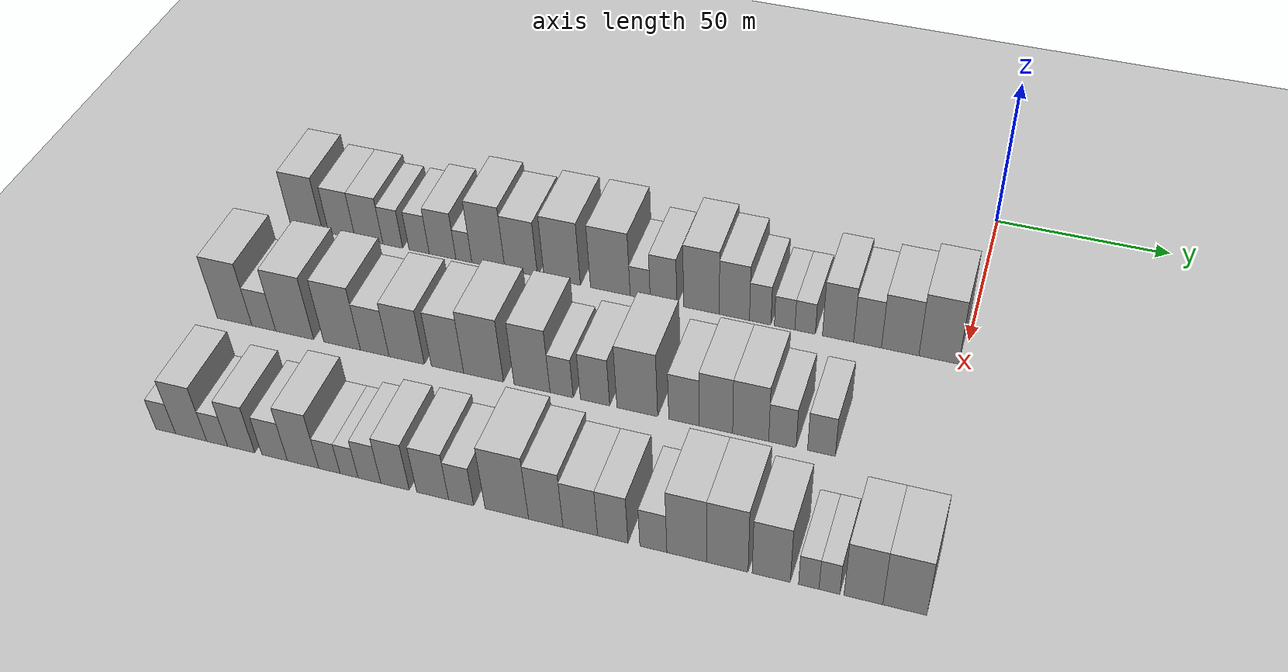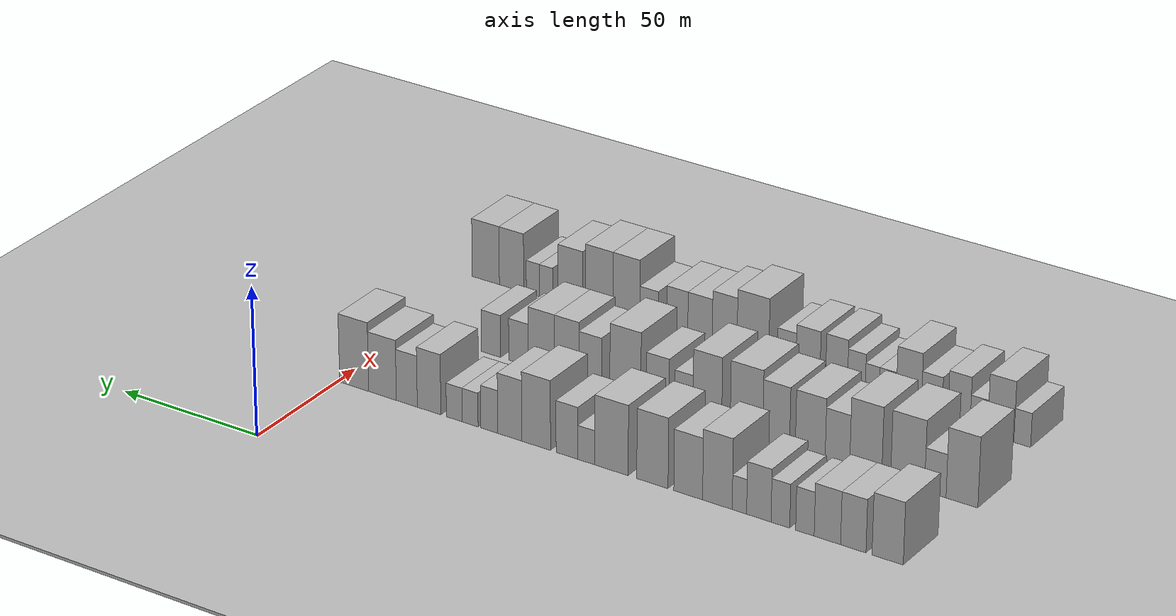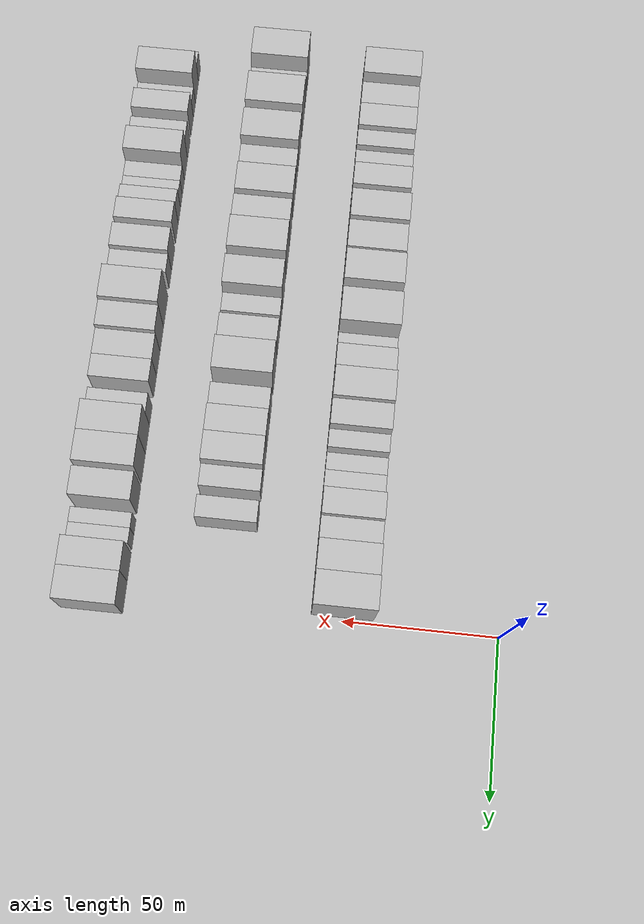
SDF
<sdf version="1.6">
 <world name="default">
  <include><name>ground_plane_1</name><uri>model://HANNAS_ground_plane</uri></include>
  <include>
   <name>ground_plane_2</name>
   <uri>model://HANNAS_ground_plane</uri>
   <pose>100 0 0  0 0 0</pose>
  </include>
  <model name="building_23">
   <static>1</static>
   <pose>50.0000 -193.7813 0 0.000000 0.000000 0.000000</pose>
   <link name="link">
    <pose>0 0 10.50 0 0 0</pose>
    <collision name="collision"><geometry><box><size>20.0000 10.2829 21.0000</size></box></geometry></collision>
    <visual name="visual">
     <cast_shadows>0</cast_shadows>
     <geometry><box><size>20.0000 10.2829 21.0000</size></box></geometry>
     <material>
      <script>
       <uri>model://HANNAS_wall/materials/scripts</uri>
       <uri>model://HANNAS_wall/materials/textures</uri>
       <name>vrc/HANNAS_wall</name>
      </script>
     </material>
    </visual>
   </link>
  </model>
  <model name="building_24">
   <static>1</static>
   <pose>50.0000 -182.4330 0 0.000000 0.000000 0.000000</pose>
   <link name="link">
    <pose>0 0 9.00 0 0 0</pose>
    <collision name="collision"><geometry><box><size>20.0000 8.4136 18.0000</size></box></geometry></collision>
    <visual name="visual">
     <cast_shadows>0</cast_shadows>
     <geometry><box><size>20.0000 8.4136 18.0000</size></box></geometry>
     <material>
      <script>
       <uri>model://HANNAS_wall/materials/scripts</uri>
       <uri>model://HANNAS_wall/materials/textures</uri>
       <name>vrc/HANNAS_wall</name>
      </script>
     </material>
    </visual>
   </link>
  </model>
  <model name="building_25">
   <static>1</static>
   <pose>50.0000 -173.8263 0 0.000000 0.000000 0.000000</pose>
   <link name="link">
    <pose>0 0 9.00 0 0 0</pose>
    <collision name="collision"><geometry><box><size>20.0000 8.7998 18.0000</size></box></geometry></collision>
    <visual name="visual">
     <cast_shadows>0</cast_shadows>
     <geometry><box><size>20.0000 8.7998 18.0000</size></box></geometry>
     <material>
      <script>
       <uri>model://HANNAS_wall/materials/scripts</uri>
       <uri>model://HANNAS_wall/materials/textures</uri>
       <name>vrc/HANNAS_wall</name>
      </script>
     </material>
    </visual>
   </link>
  </model>
  <model name="building_26">
   <static>1</static>
   <pose>50.0000 -166.3230 0 0.000000 0.000000 0.000000</pose>
   <link name="link">
    <pose>0 0 7.50 0 0 0</pose>
    <collision name="collision"><geometry><box><size>20.0000 6.2067 15.0000</size></box></geometry></collision>
    <visual name="visual">
     <cast_shadows>0</cast_shadows>
     <geometry><box><size>20.0000 6.2067 15.0000</size></box></geometry>
     <material>
      <script>
       <uri>model://HANNAS_wall/materials/scripts</uri>
       <uri>model://HANNAS_wall/materials/textures</uri>
       <name>vrc/HANNAS_wall</name>
      </script>
     </material>
    </visual>
   </link>
  </model>
  <model name="building_27">
   <static>1</static>
   <pose>50.0000 -158.0686 0 0.000000 0.000000 0.000000</pose>
   <link name="link">
    <pose>0 0 7.50 0 0 0</pose>
    <collision name="collision"><geometry><box><size>20.0000 6.3021 15.0000</size></box></geometry></collision>
    <visual name="visual">
     <cast_shadows>0</cast_shadows>
     <geometry><box><size>20.0000 6.3021 15.0000</size></box></geometry>
     <material>
      <script>
       <uri>model://HANNAS_wall/materials/scripts</uri>
       <uri>model://HANNAS_wall/materials/textures</uri>
       <name>vrc/HANNAS_wall</name>
      </script>
     </material>
    </visual>
   </link>
  </model>
  <model name="building_28">
   <static>1</static>
   <pose>50.0000 -150.7782 0 0.000000 0.000000 0.000000</pose>
   <link name="link">
    <pose>0 0 9.00 0 0 0</pose>
    <collision name="collision"><geometry><box><size>20.0000 8.2787 18.0000</size></box></geometry></collision>
    <visual name="visual">
     <cast_shadows>0</cast_shadows>
     <geometry><box><size>20.0000 8.2787 18.0000</size></box></geometry>
     <material>
      <script>
       <uri>model://HANNAS_wall/materials/scripts</uri>
       <uri>model://HANNAS_wall/materials/textures</uri>
       <name>vrc/HANNAS_wall</name>
      </script>
     </material>
    </visual>
   </link>
  </model>
  <model name="building_29">
   <static>1</static>
   <pose>50.0000 -144.1858 0 0.000000 0.000000 0.000000</pose>
   <link name="link">
    <pose>0 0 6.00 0 0 0</pose>
    <collision name="collision"><geometry><box><size>20.0000 4.9062 12.0000</size></box></geometry></collision>
    <visual name="visual">
     <cast_shadows>0</cast_shadows>
     <geometry><box><size>20.0000 4.9062 12.0000</size></box></geometry>
     <material>
      <script>
       <uri>model://HANNAS_wall/materials/scripts</uri>
       <uri>model://HANNAS_wall/materials/textures</uri>
       <name>vrc/HANNAS_wall</name>
      </script>
     </material>
    </visual>
   </link>
  </model>
  <model name="building_30">
   <static>1</static>
   <pose>50.0000 -136.6641 0 0.000000 0.000000 0.000000</pose>
   <link name="link">
    <pose>0 0 12.00 0 0 0</pose>
    <collision name="collision"><geometry><box><size>20.0000 10.1371 24.0000</size></box></geometry></collision>
    <visual name="visual">
     <cast_shadows>0</cast_shadows>
     <geometry><box><size>20.0000 10.1371 24.0000</size></box></geometry>
     <material>
      <script>
       <uri>model://HANNAS_wall/materials/scripts</uri>
       <uri>model://HANNAS_wall/materials/textures</uri>
       <name>vrc/HANNAS_wall</name>
      </script>
     </material>
    </visual>
   </link>
  </model>
  <model name="building_31">
   <static>1</static>
   <pose>50.0000 -126.6394 0 0.000000 0.000000 0.000000</pose>
   <link name="link">
    <pose>0 0 10.50 0 0 0</pose>
    <collision name="collision"><geometry><box><size>20.0000 9.9122 21.0000</size></box></geometry></collision>
    <visual name="visual">
     <cast_shadows>0</cast_shadows>
     <geometry><box><size>20.0000 9.9122 21.0000</size></box></geometry>
     <material>
      <script>
       <uri>model://HANNAS_wall/materials/scripts</uri>
       <uri>model://HANNAS_wall/materials/textures</uri>
       <name>vrc/HANNAS_wall</name>
      </script>
     </material>
    </visual>
   </link>
  </model>
  <model name="building_32">
   <static>1</static>
   <pose>50.0000 -114.2487 0 0.000000 0.000000 0.000000</pose>
   <link name="link">
    <pose>0 0 12.00 0 0 0</pose>
    <collision name="collision"><geometry><box><size>20.0000 10.8692 24.0000</size></box></geometry></collision>
    <visual name="visual">
     <cast_shadows>0</cast_shadows>
     <geometry><box><size>20.0000 10.8692 24.0000</size></box></geometry>
     <material>
      <script>
       <uri>model://HANNAS_wall/materials/scripts</uri>
       <uri>model://HANNAS_wall/materials/textures</uri>
       <name>vrc/HANNAS_wall</name>
      </script>
     </material>
    </visual>
   </link>
  </model>
  <model name="building_33">
   <static>1</static>
   <pose>50.0000 -99.9385 0 0.000000 0.000000 0.000000</pose>
   <link name="link">
    <pose>0 0 12.00 0 0 0</pose>
    <collision name="collision"><geometry><box><size>20.0000 11.7513 24.0000</size></box></geometry></collision>
    <visual name="visual">
     <cast_shadows>0</cast_shadows>
     <geometry><box><size>20.0000 11.7513 24.0000</size></box></geometry>
     <material>
      <script>
       <uri>model://HANNAS_wall/materials/scripts</uri>
       <uri>model://HANNAS_wall/materials/textures</uri>
       <name>vrc/HANNAS_wall</name>
      </script>
     </material>
    </visual>
   </link>
  </model>
  <model name="building_34">
   <static>1</static>
   <pose>50.0000 -91.1195 0 0.000000 0.000000 0.000000</pose>
   <link name="link">
    <pose>0 0 6.00 0 0 0</pose>
    <collision name="collision"><geometry><box><size>20.0000 5.8866 12.0000</size></box></geometry></collision>
    <visual name="visual">
     <cast_shadows>0</cast_shadows>
     <geometry><box><size>20.0000 5.8866 12.0000</size></box></geometry>
     <material>
      <script>
       <uri>model://HANNAS_wall/materials/scripts</uri>
       <uri>model://HANNAS_wall/materials/textures</uri>
       <name>vrc/HANNAS_wall</name>
      </script>
     </material>
    </visual>
   </link>
  </model>
  <model name="building_35">
   <static>1</static>
   <pose>50.0000 -84.2856 0 0.000000 0.000000 0.000000</pose>
   <link name="link">
    <pose>0 0 9.00 0 0 0</pose>
    <collision name="collision"><geometry><box><size>20.0000 7.7811 18.0000</size></box></geometry></collision>
    <visual name="visual">
     <cast_shadows>0</cast_shadows>
     <geometry><box><size>20.0000 7.7811 18.0000</size></box></geometry>
     <material>
      <script>
       <uri>model://HANNAS_wall/materials/scripts</uri>
       <uri>model://HANNAS_wall/materials/textures</uri>
       <name>vrc/HANNAS_wall</name>
      </script>
     </material>
    </visual>
   </link>
  </model>
  <model name="building_36">
   <static>1</static>
   <pose>50.0000 -73.2545 0 0.000000 0.000000 0.000000</pose>
   <link name="link">
    <pose>0 0 12.00 0 0 0</pose>
    <collision name="collision"><geometry><box><size>20.0000 10.2811 24.0000</size></box></geometry></collision>
    <visual name="visual">
     <cast_shadows>0</cast_shadows>
     <geometry><box><size>20.0000 10.2811 24.0000</size></box></geometry>
     <material>
      <script>
       <uri>model://HANNAS_wall/materials/scripts</uri>
       <uri>model://HANNAS_wall/materials/textures</uri>
       <name>vrc/HANNAS_wall</name>
      </script>
     </material>
    </visual>
   </link>
  </model>
  <model name="building_37">
   <static>1</static>
   <pose>50.0000 -63.7872 0 0.000000 0.000000 0.000000</pose>
   <link name="link">
    <pose>0 0 10.50 0 0 0</pose>
    <collision name="collision"><geometry><box><size>20.0000 8.6535 21.0000</size></box></geometry></collision>
    <visual name="visual">
     <cast_shadows>0</cast_shadows>
     <geometry><box><size>20.0000 8.6535 21.0000</size></box></geometry>
     <material>
      <script>
       <uri>model://HANNAS_wall/materials/scripts</uri>
       <uri>model://HANNAS_wall/materials/textures</uri>
       <name>vrc/HANNAS_wall</name>
      </script>
     </material>
    </visual>
   </link>
  </model>
  <model name="building_38">
   <static>1</static>
   <pose>50.0000 -56.4158 0 0.000000 0.000000 0.000000</pose>
   <link name="link">
    <pose>0 0 7.50 0 0 0</pose>
    <collision name="collision"><geometry><box><size>20.0000 6.0895 15.0000</size></box></geometry></collision>
    <visual name="visual">
     <cast_shadows>0</cast_shadows>
     <geometry><box><size>20.0000 6.0895 15.0000</size></box></geometry>
     <material>
      <script>
       <uri>model://HANNAS_wall/materials/scripts</uri>
       <uri>model://HANNAS_wall/materials/textures</uri>
       <name>vrc/HANNAS_wall</name>
      </script>
     </material>
    </visual>
   </link>
  </model>
  <model name="building_39">
   <static>1</static>
   <pose>50.0000 -49.4763 0 0.000000 0.000000 0.000000</pose>
   <link name="link">
    <pose>0 0 6.00 0 0 0</pose>
    <collision name="collision"><geometry><box><size>20.0000 5.7894 12.0000</size></box></geometry></collision>
    <visual name="visual">
     <cast_shadows>0</cast_shadows>
     <geometry><box><size>20.0000 5.7894 12.0000</size></box></geometry>
     <material>
      <script>
       <uri>model://HANNAS_wall/materials/scripts</uri>
       <uri>model://HANNAS_wall/materials/textures</uri>
       <name>vrc/HANNAS_wall</name>
      </script>
     </material>
    </visual>
   </link>
  </model>
  <model name="building_40">
   <static>1</static>
   <pose>50.0000 -43.7081 0 0.000000 0.000000 0.000000</pose>
   <link name="link">
    <pose>0 0 6.00 0 0 0</pose>
    <collision name="collision"><geometry><box><size>20.0000 5.7472 12.0000</size></box></geometry></collision>
    <visual name="visual">
     <cast_shadows>0</cast_shadows>
     <geometry><box><size>20.0000 5.7472 12.0000</size></box></geometry>
     <material>
      <script>
       <uri>model://HANNAS_wall/materials/scripts</uri>
       <uri>model://HANNAS_wall/materials/textures</uri>
       <name>vrc/HANNAS_wall</name>
      </script>
     </material>
    </visual>
   </link>
  </model>
  <model name="building_41">
   <static>1</static>
   <pose>50.0000 -34.5002 0 0.000000 0.000000 0.000000</pose>
   <link name="link">
    <pose>0 0 10.50 0 0 0</pose>
    <collision name="collision"><geometry><box><size>20.0000 8.6686 21.0000</size></box></geometry></collision>
    <visual name="visual">
     <cast_shadows>0</cast_shadows>
     <geometry><box><size>20.0000 8.6686 21.0000</size></box></geometry>
     <material>
      <script>
       <uri>model://HANNAS_wall/materials/scripts</uri>
       <uri>model://HANNAS_wall/materials/textures</uri>
       <name>vrc/HANNAS_wall</name>
      </script>
     </material>
    </visual>
   </link>
  </model>
  <model name="building_42">
   <static>1</static>
   <pose>50.0000 -26.3095 0 0.000000 0.000000 0.000000</pose>
   <link name="link">
    <pose>0 0 9.00 0 0 0</pose>
    <collision name="collision"><geometry><box><size>20.0000 7.7129 18.0000</size></box></geometry></collision>
    <visual name="visual">
     <cast_shadows>0</cast_shadows>
     <geometry><box><size>20.0000 7.7129 18.0000</size></box></geometry>
     <material>
      <script>
       <uri>model://HANNAS_wall/materials/scripts</uri>
       <uri>model://HANNAS_wall/materials/textures</uri>
       <name>vrc/HANNAS_wall</name>
      </script>
     </material>
    </visual>
   </link>
  </model>
  <model name="building_43">
   <static>1</static>
   <pose>50.0000 -17.3061 0 0.000000 0.000000 0.000000</pose>
   <link name="link">
    <pose>0 0 10.50 0 0 0</pose>
    <collision name="collision"><geometry><box><size>20.0000 10.2939 21.0000</size></box></geometry></collision>
    <visual name="visual">
     <cast_shadows>0</cast_shadows>
     <geometry><box><size>20.0000 10.2939 21.0000</size></box></geometry>
     <material>
      <script>
       <uri>model://HANNAS_wall/materials/scripts</uri>
       <uri>model://HANNAS_wall/materials/textures</uri>
       <name>vrc/HANNAS_wall</name>
      </script>
     </material>
    </visual>
   </link>
  </model>
  <model name="building_44">
   <static>1</static>
   <pose>50.0000 -6.7332 0 0.000000 0.000000 0.000000</pose>
   <link name="link">
    <pose>0 0 12.00 0 0 0</pose>
    <collision name="collision"><geometry><box><size>20.0000 10.8519 24.0000</size></box></geometry></collision>
    <visual name="visual">
     <cast_shadows>0</cast_shadows>
     <geometry><box><size>20.0000 10.8519 24.0000</size></box></geometry>
     <material>
      <script>
       <uri>model://HANNAS_wall/materials/scripts</uri>
       <uri>model://HANNAS_wall/materials/textures</uri>
       <name>vrc/HANNAS_wall</name>
      </script>
     </material>
    </visual>
   </link>
  </model>
  <model name="building_106">
   <static>1</static>
   <pose>90.0000 -195.5051 0 0.000000 0.000000 0.000000</pose>
   <link name="link">
    <pose>0 0 12.00 0 0 0</pose>
    <collision name="collision"><geometry><box><size>20.0000 10.5979 24.0000</size></box></geometry></collision>
    <visual name="visual">
     <cast_shadows>0</cast_shadows>
     <geometry><box><size>20.0000 10.5979 24.0000</size></box></geometry>
     <material>
      <script>
       <uri>model://HANNAS_wall/materials/scripts</uri>
       <uri>model://HANNAS_wall/materials/textures</uri>
       <name>vrc/HANNAS_wall</name>
      </script>
     </material>
    </visual>
   </link>
  </model>
  <model name="building_107">
   <static>1</static>
   <pose>90.0000 -186.5978 0 0.000000 0.000000 0.000000</pose>
   <link name="link">
    <pose>0 0 7.50 0 0 0</pose>
    <collision name="collision"><geometry><box><size>20.0000 7.2169 15.0000</size></box></geometry></collision>
    <visual name="visual">
     <cast_shadows>0</cast_shadows>
     <geometry><box><size>20.0000 7.2169 15.0000</size></box></geometry>
     <material>
      <script>
       <uri>model://HANNAS_wall/materials/scripts</uri>
       <uri>model://HANNAS_wall/materials/textures</uri>
       <name>vrc/HANNAS_wall</name>
      </script>
     </material>
    </visual>
   </link>
  </model>
  <model name="building_108">
   <static>1</static>
   <pose>90.0000 -177.2753 0 0.000000 0.000000 0.000000</pose>
   <link name="link">
    <pose>0 0 12.00 0 0 0</pose>
    <collision name="collision"><geometry><box><size>20.0000 11.4280 24.0000</size></box></geometry></collision>
    <visual name="visual">
     <cast_shadows>0</cast_shadows>
     <geometry><box><size>20.0000 11.4280 24.0000</size></box></geometry>
     <material>
      <script>
       <uri>model://HANNAS_wall/materials/scripts</uri>
       <uri>model://HANNAS_wall/materials/textures</uri>
       <name>vrc/HANNAS_wall</name>
      </script>
     </material>
    </visual>
   </link>
  </model>
  <model name="building_109">
   <static>1</static>
   <pose>90.0000 -163.1067 0 0.000000 0.000000 0.000000</pose>
   <link name="link">
    <pose>0 0 12.00 0 0 0</pose>
    <collision name="collision"><geometry><box><size>20.0000 10.9094 24.0000</size></box></geometry></collision>
    <visual name="visual">
     <cast_shadows>0</cast_shadows>
     <geometry><box><size>20.0000 10.9094 24.0000</size></box></geometry>
     <material>
      <script>
       <uri>model://HANNAS_wall/materials/scripts</uri>
       <uri>model://HANNAS_wall/materials/textures</uri>
       <name>vrc/HANNAS_wall</name>
      </script>
     </material>
    </visual>
   </link>
  </model>
  <model name="building_110">
   <static>1</static>
   <pose>90.0000 -153.4467 0 0.000000 0.000000 0.000000</pose>
   <link name="link">
    <pose>0 0 9.00 0 0 0</pose>
    <collision name="collision"><geometry><box><size>20.0000 8.4106 18.0000</size></box></geometry></collision>
    <visual name="visual">
     <cast_shadows>0</cast_shadows>
     <geometry><box><size>20.0000 8.4106 18.0000</size></box></geometry>
     <material>
      <script>
       <uri>model://HANNAS_wall/materials/scripts</uri>
       <uri>model://HANNAS_wall/materials/textures</uri>
       <name>vrc/HANNAS_wall</name>
      </script>
     </material>
    </visual>
   </link>
  </model>
  <model name="building_111">
   <static>1</static>
   <pose>90.0000 -144.0956 0 0.000000 0.000000 0.000000</pose>
   <link name="link">
    <pose>0 0 10.50 0 0 0</pose>
    <collision name="collision"><geometry><box><size>20.0000 10.2915 21.0000</size></box></geometry></collision>
    <visual name="visual">
     <cast_shadows>0</cast_shadows>
     <geometry><box><size>20.0000 10.2915 21.0000</size></box></geometry>
     <material>
      <script>
       <uri>model://HANNAS_wall/materials/scripts</uri>
       <uri>model://HANNAS_wall/materials/textures</uri>
       <name>vrc/HANNAS_wall</name>
      </script>
     </material>
    </visual>
   </link>
  </model>
  <model name="building_112">
   <static>1</static>
   <pose>90.0000 -132.2715 0 0.000000 0.000000 0.000000</pose>
   <link name="link">
    <pose>0 0 10.50 0 0 0</pose>
    <collision name="collision"><geometry><box><size>20.0000 9.3566 21.0000</size></box></geometry></collision>
    <visual name="visual">
     <cast_shadows>0</cast_shadows>
     <geometry><box><size>20.0000 9.3566 21.0000</size></box></geometry>
     <material>
      <script>
       <uri>model://HANNAS_wall/materials/scripts</uri>
       <uri>model://HANNAS_wall/materials/textures</uri>
       <name>vrc/HANNAS_wall</name>
      </script>
     </material>
    </visual>
   </link>
  </model>
  <model name="building_113">
   <static>1</static>
   <pose>90.0000 -121.9136 0 0.000000 0.000000 0.000000</pose>
   <link name="link">
    <pose>0 0 12.00 0 0 0</pose>
    <collision name="collision"><geometry><box><size>20.0000 11.3593 24.0000</size></box></geometry></collision>
    <visual name="visual">
     <cast_shadows>0</cast_shadows>
     <geometry><box><size>20.0000 11.3593 24.0000</size></box></geometry>
     <material>
      <script>
       <uri>model://HANNAS_wall/materials/scripts</uri>
       <uri>model://HANNAS_wall/materials/textures</uri>
       <name>vrc/HANNAS_wall</name>
      </script>
     </material>
    </visual>
   </link>
  </model>
  <model name="building_114">
   <static>1</static>
   <pose>90.0000 -108.1599 0 0.000000 0.000000 0.000000</pose>
   <link name="link">
    <pose>0 0 12.00 0 0 0</pose>
    <collision name="collision"><geometry><box><size>20.0000 10.1482 24.0000</size></box></geometry></collision>
    <visual name="visual">
     <cast_shadows>0</cast_shadows>
     <geometry><box><size>20.0000 10.1482 24.0000</size></box></geometry>
     <material>
      <script>
       <uri>model://HANNAS_wall/materials/scripts</uri>
       <uri>model://HANNAS_wall/materials/textures</uri>
       <name>vrc/HANNAS_wall</name>
      </script>
     </material>
    </visual>
   </link>
  </model>
  <model name="building_115">
   <static>1</static>
   <pose>90.0000 -99.8527 0 0.000000 0.000000 0.000000</pose>
   <link name="link">
    <pose>0 0 7.50 0 0 0</pose>
    <collision name="collision"><geometry><box><size>20.0000 6.4661 15.0000</size></box></geometry></collision>
    <visual name="visual">
     <cast_shadows>0</cast_shadows>
     <geometry><box><size>20.0000 6.4661 15.0000</size></box></geometry>
     <material>
      <script>
       <uri>model://HANNAS_wall/materials/scripts</uri>
       <uri>model://HANNAS_wall/materials/textures</uri>
       <name>vrc/HANNAS_wall</name>
      </script>
     </material>
    </visual>
   </link>
  </model>
  <model name="building_116">
   <static>1</static>
   <pose>90.0000 -90.5655 0 0.000000 0.000000 0.000000</pose>
   <link name="link">
    <pose>0 0 9.00 0 0 0</pose>
    <collision name="collision"><geometry><box><size>20.0000 8.1085 18.0000</size></box></geometry></collision>
    <visual name="visual">
     <cast_shadows>0</cast_shadows>
     <geometry><box><size>20.0000 8.1085 18.0000</size></box></geometry>
     <material>
      <script>
       <uri>model://HANNAS_wall/materials/scripts</uri>
       <uri>model://HANNAS_wall/materials/textures</uri>
       <name>vrc/HANNAS_wall</name>
      </script>
     </material>
    </visual>
   </link>
  </model>
  <model name="building_117">
   <static>1</static>
   <pose>90.0000 -78.9314 0 0.000000 0.000000 0.000000</pose>
   <link name="link">
    <pose>0 0 12.00 0 0 0</pose>
    <collision name="collision"><geometry><box><size>20.0000 11.1597 24.0000</size></box></geometry></collision>
    <visual name="visual">
     <cast_shadows>0</cast_shadows>
     <geometry><box><size>20.0000 11.1597 24.0000</size></box></geometry>
     <material>
      <script>
       <uri>model://HANNAS_wall/materials/scripts</uri>
       <uri>model://HANNAS_wall/materials/textures</uri>
       <name>vrc/HANNAS_wall</name>
      </script>
     </material>
    </visual>
   </link>
  </model>
  <model name="building_118">
   <static>1</static>
   <pose>90.0000 -66.2445 0 0.000000 0.000000 0.000000</pose>
   <link name="link">
    <pose>0 0 9.00 0 0 0</pose>
    <collision name="collision"><geometry><box><size>20.0000 8.2140 18.0000</size></box></geometry></collision>
    <visual name="visual">
     <cast_shadows>0</cast_shadows>
     <geometry><box><size>20.0000 8.2140 18.0000</size></box></geometry>
     <material>
      <script>
       <uri>model://HANNAS_wall/materials/scripts</uri>
       <uri>model://HANNAS_wall/materials/textures</uri>
       <name>vrc/HANNAS_wall</name>
      </script>
     </material>
    </visual>
   </link>
  </model>
  <model name="building_119">
   <static>1</static>
   <pose>90.0000 -57.6435 0 0.000000 0.000000 0.000000</pose>
   <link name="link">
    <pose>0 0 10.50 0 0 0</pose>
    <collision name="collision"><geometry><box><size>20.0000 8.9881 21.0000</size></box></geometry></collision>
    <visual name="visual">
     <cast_shadows>0</cast_shadows>
     <geometry><box><size>20.0000 8.9881 21.0000</size></box></geometry>
     <material>
      <script>
       <uri>model://HANNAS_wall/materials/scripts</uri>
       <uri>model://HANNAS_wall/materials/textures</uri>
       <name>vrc/HANNAS_wall</name>
      </script>
     </material>
    </visual>
   </link>
  </model>
  <model name="building_120">
   <static>1</static>
   <pose>90.0000 -48.3693 0 0.000000 0.000000 0.000000</pose>
   <link name="link">
    <pose>0 0 10.50 0 0 0</pose>
    <collision name="collision"><geometry><box><size>20.0000 9.5602 21.0000</size></box></geometry></collision>
    <visual name="visual">
     <cast_shadows>0</cast_shadows>
     <geometry><box><size>20.0000 9.5602 21.0000</size></box></geometry>
     <material>
      <script>
       <uri>model://HANNAS_wall/materials/scripts</uri>
       <uri>model://HANNAS_wall/materials/textures</uri>
       <name>vrc/HANNAS_wall</name>
      </script>
     </material>
    </visual>
   </link>
  </model>
  <model name="building_121">
   <static>1</static>
   <pose>90.0000 -39.9691 0 0.000000 0.000000 0.000000</pose>
   <link name="link">
    <pose>0 0 7.50 0 0 0</pose>
    <collision name="collision"><geometry><box><size>20.0000 7.2403 15.0000</size></box></geometry></collision>
    <visual name="visual">
     <cast_shadows>0</cast_shadows>
     <geometry><box><size>20.0000 7.2403 15.0000</size></box></geometry>
     <material>
      <script>
       <uri>model://HANNAS_wall/materials/scripts</uri>
       <uri>model://HANNAS_wall/materials/textures</uri>
       <name>vrc/HANNAS_wall</name>
      </script>
     </material>
    </visual>
   </link>
  </model>
  <model name="building_122">
   <static>1</static>
   <pose>90.0000 -29.7372 0 0.000000 0.000000 0.000000</pose>
   <link name="link">
    <pose>0 0 7.50 0 0 0</pose>
    <collision name="collision"><geometry><box><size>20.0000 7.2234 15.0000</size></box></geometry></collision>
    <visual name="visual">
     <cast_shadows>0</cast_shadows>
     <geometry><box><size>20.0000 7.2234 15.0000</size></box></geometry>
     <material>
      <script>
       <uri>model://HANNAS_wall/materials/scripts</uri>
       <uri>model://HANNAS_wall/materials/textures</uri>
       <name>vrc/HANNAS_wall</name>
      </script>
     </material>
    </visual>
   </link>
  </model>
  <model name="building_187">
   <static>1</static>
   <pose>130.0000 -193.5251 0 0.000000 0.000000 0.000000</pose>
   <link name="link">
    <pose>0 0 6.00 0 0 0</pose>
    <collision name="collision"><geometry><box><size>20.0000 5.6647 12.0000</size></box></geometry></collision>
    <visual name="visual">
     <cast_shadows>0</cast_shadows>
     <geometry><box><size>20.0000 5.6647 12.0000</size></box></geometry>
     <material>
      <script>
       <uri>model://HANNAS_wall/materials/scripts</uri>
       <uri>model://HANNAS_wall/materials/textures</uri>
       <name>vrc/HANNAS_wall</name>
      </script>
     </material>
    </visual>
   </link>
  </model>
  <model name="building_188">
   <static>1</static>
   <pose>130.0000 -186.2244 0 0.000000 0.000000 0.000000</pose>
   <link name="link">
    <pose>0 0 10.50 0 0 0</pose>
    <collision name="collision"><geometry><box><size>20.0000 8.9367 21.0000</size></box></geometry></collision>
    <visual name="visual">
     <cast_shadows>0</cast_shadows>
     <geometry><box><size>20.0000 8.9367 21.0000</size></box></geometry>
     <material>
      <script>
       <uri>model://HANNAS_wall/materials/scripts</uri>
       <uri>model://HANNAS_wall/materials/textures</uri>
       <name>vrc/HANNAS_wall</name>
      </script>
     </material>
    </visual>
   </link>
  </model>
  <model name="building_189">
   <static>1</static>
   <pose>130.0000 -178.7678 0 0.000000 0.000000 0.000000</pose>
   <link name="link">
    <pose>0 0 6.00 0 0 0</pose>
    <collision name="collision"><geometry><box><size>20.0000 5.9766 12.0000</size></box></geometry></collision>
    <visual name="visual">
     <cast_shadows>0</cast_shadows>
     <geometry><box><size>20.0000 5.9766 12.0000</size></box></geometry>
     <material>
      <script>
       <uri>model://HANNAS_wall/materials/scripts</uri>
       <uri>model://HANNAS_wall/materials/textures</uri>
       <name>vrc/HANNAS_wall</name>
      </script>
     </material>
    </visual>
   </link>
  </model>
  <model name="building_190">
   <static>1</static>
   <pose>130.0000 -171.9505 0 0.000000 0.000000 0.000000</pose>
   <link name="link">
    <pose>0 0 9.00 0 0 0</pose>
    <collision name="collision"><geometry><box><size>20.0000 7.6580 18.0000</size></box></geometry></collision>
    <visual name="visual">
     <cast_shadows>0</cast_shadows>
     <geometry><box><size>20.0000 7.6580 18.0000</size></box></geometry>
     <material>
      <script>
       <uri>model://HANNAS_wall/materials/scripts</uri>
       <uri>model://HANNAS_wall/materials/textures</uri>
       <name>vrc/HANNAS_wall</name>
      </script>
     </material>
    </visual>
   </link>
  </model>
  <model name="building_191">
   <static>1</static>
   <pose>130.0000 -162.5494 0 0.000000 0.000000 0.000000</pose>
   <link name="link">
    <pose>0 0 7.50 0 0 0</pose>
    <collision name="collision"><geometry><box><size>20.0000 7.1441 15.0000</size></box></geometry></collision>
    <visual name="visual">
     <cast_shadows>0</cast_shadows>
     <geometry><box><size>20.0000 7.1441 15.0000</size></box></geometry>
     <material>
      <script>
       <uri>model://HANNAS_wall/materials/scripts</uri>
       <uri>model://HANNAS_wall/materials/textures</uri>
       <name>vrc/HANNAS_wall</name>
      </script>
     </material>
    </visual>
   </link>
  </model>
  <model name="building_192">
   <static>1</static>
   <pose>130.0000 -154.6097 0 0.000000 0.000000 0.000000</pose>
   <link name="link">
    <pose>0 0 10.50 0 0 0</pose>
    <collision name="collision"><geometry><box><size>20.0000 8.7355 21.0000</size></box></geometry></collision>
    <visual name="visual">
     <cast_shadows>0</cast_shadows>
     <geometry><box><size>20.0000 8.7355 21.0000</size></box></geometry>
     <material>
      <script>
       <uri>model://HANNAS_wall/materials/scripts</uri>
       <uri>model://HANNAS_wall/materials/textures</uri>
       <name>vrc/HANNAS_wall</name>
      </script>
     </material>
    </visual>
   </link>
  </model>
  <model name="building_193">
   <static>1</static>
   <pose>130.0000 -147.3008 0 0.000000 0.000000 0.000000</pose>
   <link name="link">
    <pose>0 0 6.00 0 0 0</pose>
    <collision name="collision"><geometry><box><size>20.0000 5.8824 12.0000</size></box></geometry></collision>
    <visual name="visual">
     <cast_shadows>0</cast_shadows>
     <geometry><box><size>20.0000 5.8824 12.0000</size></box></geometry>
     <material>
      <script>
       <uri>model://HANNAS_wall/materials/scripts</uri>
       <uri>model://HANNAS_wall/materials/textures</uri>
       <name>vrc/HANNAS_wall</name>
      </script>
     </material>
    </visual>
   </link>
  </model>
  <model name="building_194">
   <static>1</static>
   <pose>130.0000 -141.9034 0 0.000000 0.000000 0.000000</pose>
   <link name="link">
    <pose>0 0 6.00 0 0 0</pose>
    <collision name="collision"><geometry><box><size>20.0000 4.9123 12.0000</size></box></geometry></collision>
    <visual name="visual">
     <cast_shadows>0</cast_shadows>
     <geometry><box><size>20.0000 4.9123 12.0000</size></box></geometry>
     <material>
      <script>
       <uri>model://HANNAS_wall/materials/scripts</uri>
       <uri>model://HANNAS_wall/materials/textures</uri>
       <name>vrc/HANNAS_wall</name>
      </script>
     </material>
    </visual>
   </link>
  </model>
  <model name="building_195">
   <static>1</static>
   <pose>130.0000 -136.3388 0 0.000000 0.000000 0.000000</pose>
   <link name="link">
    <pose>0 0 7.50 0 0 0</pose>
    <collision name="collision"><geometry><box><size>20.0000 6.2169 15.0000</size></box></geometry></collision>
    <visual name="visual">
     <cast_shadows>0</cast_shadows>
     <geometry><box><size>20.0000 6.2169 15.0000</size></box></geometry>
     <material>
      <script>
       <uri>model://HANNAS_wall/materials/scripts</uri>
       <uri>model://HANNAS_wall/materials/textures</uri>
       <name>vrc/HANNAS_wall</name>
      </script>
     </material>
    </visual>
   </link>
  </model>
  <model name="building_196">
   <static>1</static>
   <pose>130.0000 -129.3824 0 0.000000 0.000000 0.000000</pose>
   <link name="link">
    <pose>0 0 9.00 0 0 0</pose>
    <collision name="collision"><geometry><box><size>20.0000 7.6958 18.0000</size></box></geometry></collision>
    <visual name="visual">
     <cast_shadows>0</cast_shadows>
     <geometry><box><size>20.0000 7.6958 18.0000</size></box></geometry>
     <material>
      <script>
       <uri>model://HANNAS_wall/materials/scripts</uri>
       <uri>model://HANNAS_wall/materials/textures</uri>
       <name>vrc/HANNAS_wall</name>
      </script>
     </material>
    </visual>
   </link>
  </model>
  <model name="building_197">
   <static>1</static>
   <pose>130.0000 -119.2546 0 0.000000 0.000000 0.000000</pose>
   <link name="link">
    <pose>0 0 9.00 0 0 0</pose>
    <collision name="collision"><geometry><box><size>20.0000 8.5599 18.0000</size></box></geometry></collision>
    <visual name="visual">
     <cast_shadows>0</cast_shadows>
     <geometry><box><size>20.0000 8.5599 18.0000</size></box></geometry>
     <material>
      <script>
       <uri>model://HANNAS_wall/materials/scripts</uri>
       <uri>model://HANNAS_wall/materials/textures</uri>
       <name>vrc/HANNAS_wall</name>
      </script>
     </material>
    </visual>
   </link>
  </model>
  <model name="building_198">
   <static>1</static>
   <pose>130.0000 -111.6322 0 0.000000 0.000000 0.000000</pose>
   <link name="link">
    <pose>0 0 7.50 0 0 0</pose>
    <collision name="collision"><geometry><box><size>20.0000 6.6848 15.0000</size></box></geometry></collision>
    <visual name="visual">
     <cast_shadows>0</cast_shadows>
     <geometry><box><size>20.0000 6.6848 15.0000</size></box></geometry>
     <material>
      <script>
       <uri>model://HANNAS_wall/materials/scripts</uri>
       <uri>model://HANNAS_wall/materials/textures</uri>
       <name>vrc/HANNAS_wall</name>
      </script>
     </material>
    </visual>
   </link>
  </model>
  <model name="building_199">
   <static>1</static>
   <pose>130.0000 -99.5806 0 0.000000 0.000000 0.000000</pose>
   <link name="link">
    <pose>0 0 12.00 0 0 0</pose>
    <collision name="collision"><geometry><box><size>20.0000 11.4185 24.0000</size></box></geometry></collision>
    <visual name="visual">
     <cast_shadows>0</cast_shadows>
     <geometry><box><size>20.0000 11.4185 24.0000</size></box></geometry>
     <material>
      <script>
       <uri>model://HANNAS_wall/materials/scripts</uri>
       <uri>model://HANNAS_wall/materials/textures</uri>
       <name>vrc/HANNAS_wall</name>
      </script>
     </material>
    </visual>
   </link>
  </model>
  <model name="building_200">
   <static>1</static>
   <pose>130.0000 -89.3908 0 0.000000 0.000000 0.000000</pose>
   <link name="link">
    <pose>0 0 10.50 0 0 0</pose>
    <collision name="collision"><geometry><box><size>20.0000 8.9610 21.0000</size></box></geometry></collision>
    <visual name="visual">
     <cast_shadows>0</cast_shadows>
     <geometry><box><size>20.0000 8.9610 21.0000</size></box></geometry>
     <material>
      <script>
       <uri>model://HANNAS_wall/materials/scripts</uri>
       <uri>model://HANNAS_wall/materials/textures</uri>
       <name>vrc/HANNAS_wall</name>
      </script>
     </material>
    </visual>
   </link>
  </model>
  <model name="building_201">
   <static>1</static>
   <pose>130.0000 -80.4580 0 0.000000 0.000000 0.000000</pose>
   <link name="link">
    <pose>0 0 9.00 0 0 0</pose>
    <collision name="collision"><geometry><box><size>20.0000 8.9046 18.0000</size></box></geometry></collision>
    <visual name="visual">
     <cast_shadows>0</cast_shadows>
     <geometry><box><size>20.0000 8.9046 18.0000</size></box></geometry>
     <material>
      <script>
       <uri>model://HANNAS_wall/materials/scripts</uri>
       <uri>model://HANNAS_wall/materials/textures</uri>
       <name>vrc/HANNAS_wall</name>
      </script>
     </material>
    </visual>
   </link>
  </model>
  <model name="building_202">
   <static>1</static>
   <pose>130.0000 -72.1233 0 0.000000 0.000000 0.000000</pose>
   <link name="link">
    <pose>0 0 9.00 0 0 0</pose>
    <collision name="collision"><geometry><box><size>20.0000 7.7648 18.0000</size></box></geometry></collision>
    <visual name="visual">
     <cast_shadows>0</cast_shadows>
     <geometry><box><size>20.0000 7.7648 18.0000</size></box></geometry>
     <material>
      <script>
       <uri>model://HANNAS_wall/materials/scripts</uri>
       <uri>model://HANNAS_wall/materials/textures</uri>
       <name>vrc/HANNAS_wall</name>
      </script>
     </material>
    </visual>
   </link>
  </model>
  <model name="building_203">
   <static>1</static>
   <pose>130.0000 -61.8297 0 0.000000 0.000000 0.000000</pose>
   <link name="link">
    <pose>0 0 7.50 0 0 0</pose>
    <collision name="collision"><geometry><box><size>20.0000 6.8224 15.0000</size></box></geometry></collision>
    <visual name="visual">
     <cast_shadows>0</cast_shadows>
     <geometry><box><size>20.0000 6.8224 15.0000</size></box></geometry>
     <material>
      <script>
       <uri>model://HANNAS_wall/materials/scripts</uri>
       <uri>model://HANNAS_wall/materials/textures</uri>
       <name>vrc/HANNAS_wall</name>
      </script>
     </material>
    </visual>
   </link>
  </model>
  <model name="building_204">
   <static>1</static>
   <pose>130.0000 -53.4416 0 0.000000 0.000000 0.000000</pose>
   <link name="link">
    <pose>0 0 12.00 0 0 0</pose>
    <collision name="collision"><geometry><box><size>20.0000 9.9538 24.0000</size></box></geometry></collision>
    <visual name="visual">
     <cast_shadows>0</cast_shadows>
     <geometry><box><size>20.0000 9.9538 24.0000</size></box></geometry>
     <material>
      <script>
       <uri>model://HANNAS_wall/materials/scripts</uri>
       <uri>model://HANNAS_wall/materials/textures</uri>
       <name>vrc/HANNAS_wall</name>
      </script>
     </material>
    </visual>
   </link>
  </model>
  <model name="building_205">
   <static>1</static>
   <pose>130.0000 -43.3453 0 0.000000 0.000000 0.000000</pose>
   <link name="link">
    <pose>0 0 12.00 0 0 0</pose>
    <collision name="collision"><geometry><box><size>20.0000 10.2388 24.0000</size></box></geometry></collision>
    <visual name="visual">
     <cast_shadows>0</cast_shadows>
     <geometry><box><size>20.0000 10.2388 24.0000</size></box></geometry>
     <material>
      <script>
       <uri>model://HANNAS_wall/materials/scripts</uri>
       <uri>model://HANNAS_wall/materials/textures</uri>
       <name>vrc/HANNAS_wall</name>
      </script>
     </material>
    </visual>
   </link>
  </model>
  <model name="building_206">
   <static>1</static>
   <pose>130.0000 -32.5553 0 0.000000 0.000000 0.000000</pose>
   <link name="link">
    <pose>0 0 10.50 0 0 0</pose>
    <collision name="collision"><geometry><box><size>20.0000 9.3411 21.0000</size></box></geometry></collision>
    <visual name="visual">
     <cast_shadows>0</cast_shadows>
     <geometry><box><size>20.0000 9.3411 21.0000</size></box></geometry>
     <material>
      <script>
       <uri>model://HANNAS_wall/materials/scripts</uri>
       <uri>model://HANNAS_wall/materials/textures</uri>
       <name>vrc/HANNAS_wall</name>
      </script>
     </material>
    </visual>
   </link>
  </model>
  <model name="building_207">
   <static>1</static>
   <pose>130.0000 -23.4042 0 0.000000 0.000000 0.000000</pose>
   <link name="link">
    <pose>0 0 6.00 0 0 0</pose>
    <collision name="collision"><geometry><box><size>20.0000 4.9612 12.0000</size></box></geometry></collision>
    <visual name="visual">
     <cast_shadows>0</cast_shadows>
     <geometry><box><size>20.0000 4.9612 12.0000</size></box></geometry>
     <material>
      <script>
       <uri>model://HANNAS_wall/materials/scripts</uri>
       <uri>model://HANNAS_wall/materials/textures</uri>
       <name>vrc/HANNAS_wall</name>
      </script>
     </material>
    </visual>
   </link>
  </model>
  <model name="building_208">
   <static>1</static>
   <pose>130.0000 -18.4155 0 0.000000 0.000000 0.000000</pose>
   <link name="link">
    <pose>0 0 6.00 0 0 0</pose>
    <collision name="collision"><geometry><box><size>20.0000 5.0161 12.0000</size></box></geometry></collision>
    <visual name="visual">
     <cast_shadows>0</cast_shadows>
     <geometry><box><size>20.0000 5.0161 12.0000</size></box></geometry>
     <material>
      <script>
       <uri>model://HANNAS_wall/materials/scripts</uri>
       <uri>model://HANNAS_wall/materials/textures</uri>
       <name>vrc/HANNAS_wall</name>
      </script>
     </material>
    </visual>
   </link>
  </model>
  <model name="building_209">
   <static>1</static>
   <pose>130.0000 -10.2677 0 0.000000 0.000000 0.000000</pose>
   <link name="link">
    <pose>0 0 10.50 0 0 0</pose>
    <collision name="collision"><geometry><box><size>20.0000 9.2795 21.0000</size></box></geometry></collision>
    <visual name="visual">
     <cast_shadows>0</cast_shadows>
     <geometry><box><size>20.0000 9.2795 21.0000</size></box></geometry>
     <material>
      <script>
       <uri>model://HANNAS_wall/materials/scripts</uri>
       <uri>model://HANNAS_wall/materials/textures</uri>
       <name>vrc/HANNAS_wall</name>
      </script>
     </material>
    </visual>
   </link>
  </model>
  <model name="building_210">
   <static>1</static>
   <pose>130.0000 -0.4240 0 0.000000 0.000000 0.000000</pose>
   <link name="link">
    <pose>0 0 10.50 0 0 0</pose>
    <collision name="collision"><geometry><box><size>20.0000 10.4079 21.0000</size></box></geometry></collision>
    <visual name="visual">
     <cast_shadows>0</cast_shadows>
     <geometry><box><size>20.0000 10.4079 21.0000</size></box></geometry>
     <material>
      <script>
       <uri>model://HANNAS_wall/materials/scripts</uri>
       <uri>model://HANNAS_wall/materials/textures</uri>
       <name>vrc/HANNAS_wall</name>
      </script>
     </material>
    </visual>
   </link>
  </model>
 </world>
</sdf>
